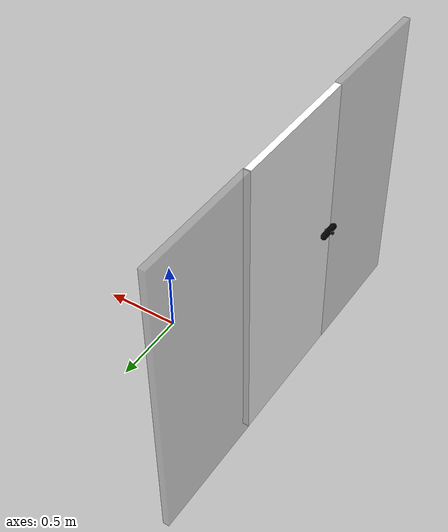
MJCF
<?xml version="1.0" ?>
<!-- |    This document was autogenerated by xacro from ./door.xml.xacro          | -->
<!-- |    EDITING THIS FILE BY HAND IS NOT RECOMMENDED                                 | -->
<mujoco model="door">
  <asset>
    <material name="mat_frame" rgba="0.5 0.5 0.5 0.4"/>
    <material name="mat_panel" rgba="1.0 1.0 1.0 1.0"/>
    <material name="mat_handle" rgba="0.0 0.0 0.0 1.0"/>
  </asset>
  <worldbody>
    <body name="door_frame" pos="-0.85 -0.435 0.955" quat="0.70710678 0.0 0.0 0.70710678" user="1001 0 2002 -0.4 -0.1 0.252 0 0.3 0.5">
      <geom material="mat_frame" pos="-0.4 0 0" size="0.4 0.02 0.955" type="box"/>
      <geom material="mat_frame" pos="1.27 0 0" size="0.4 0.02 0.955" type="box"/>
      <site group="3" name="S_handle_target" pos="0.75 -0.5 -0.18" size="0.02"/>
      <body name="door_panel" pos="0.435 0 0">
        <inertial diaginertia="0.4173 0.5667 0.1507" mass="10.0" pos="0 0 0" quat="1 0 0 0"/>
        <geom friction="0.5 0.1 0.001" material="mat_panel" size="0.435 0.02 0.95" type="box"/>
        <joint axis="0 0 1" damping="5.0" frictionloss="5.0" limited="true" name="door_hinge" pos="0.435 0 0" range="-1.57 1.57" springref="0.0" stiffness="30.0"/>
        <body name="door_latch" pos="-0.375 0 0.0">
          <inertial diaginertia="0.0483771 0.0410001 0.0211013" mass="0.353743" pos="-0.027762 0.0238544 0.0" quat="0.365653 0.605347 -0.36522 0.605365"/>
          <joint axis="0 1 0" damping="1.0" frictionloss="0.2" name="door_latch" pos="0 0 0" range="0.0 1.6" springref="0.0" stiffness="2.0"/>
          <geom material="mat_handle" quat="0.7071068 0.7071068 0 0" size="0.01 0.075" type="cylinder"/>
          <geom condim="4" material="mat_handle" pos="0.0625 -0.075 0" quat="0.7071068 0 0.7071068 0" size="0.01 0.0625" type="capsule"/>
          <geom material="mat_handle" pos="0.0 0.0425 0" quat="0.7071068 0 0.7071068 0" size="0.02 0.055" type="capsule"/>
          <site group="3" name="S_handle" pos="0.15 -0.15 0.0" size="0.02"/>
        </body>
      </body>
    </body>
  </worldbody>
  <contact>
    <exclude body1="door_frame" body2="door_panel"/>
  </contact>
</mujoco>
